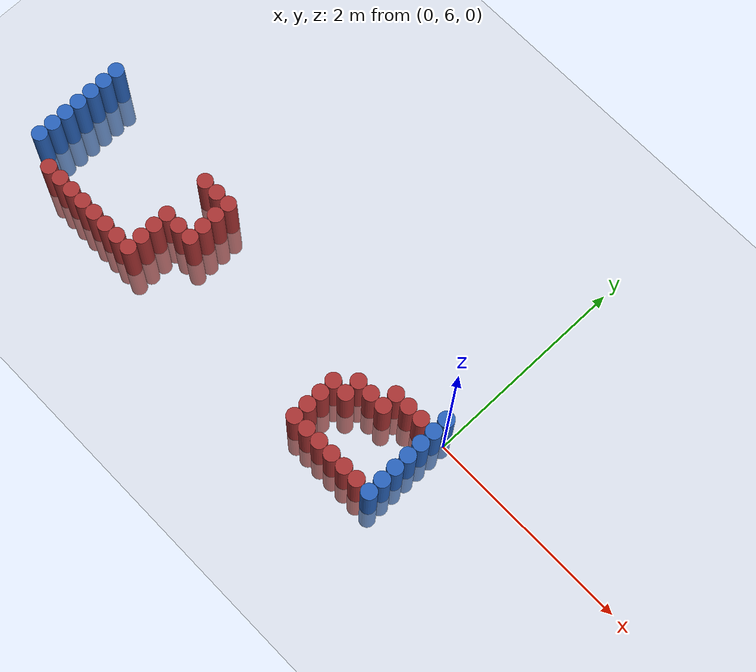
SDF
<sdf version="1.6">
 <world name="default">
  <model name="ground_plane">
   <static>1</static>
   <link name="link">
    <collision name="collision">
     <geometry><plane><normal>0 0 1</normal><size>100 100</size></plane></geometry>
     <surface><friction><ode><mu>100</mu><mu2>50</mu2></ode></friction></surface>
    </collision>
    <visual name="visual">
     <cast_shadows>0</cast_shadows>
     <geometry><plane><normal>0 0 1</normal><size>100 100</size></plane></geometry>
     <material>
      <script><uri>file://media/materials/scripts/gazebo.material</uri><name>Gazebo/Grey</name></script>
     </material>
    </visual>
   </link>
  </model>
  <model name="unit_cylinder_97">
   <static>1</static>
   <pose>-4.425000 5.325000 0.000000 0.000000 0.000000 0.000000</pose>
   <link name="link">
    <inertial>
     <mass>1</mass>
     <inertia><ixx>0.145833</ixx><ixy>0</ixy><ixz>0</ixz><iyy>0.145833</iyy><iyz>0</iyz><izz>0.125</izz></inertia>
    </inertial>
    <collision name="collision">
     <geometry><cylinder><radius>0.075000</radius><length>1</length></cylinder></geometry>
    </collision>
    <visual name="visual">
     <geometry><cylinder><radius>0.075000</radius><length>1</length></cylinder></geometry>
     <material>
      <ambient>0.152000 0.379000 0.720000 1</ambient>
      <diffuse>0.152000 0.379000 0.720000 1</diffuse>
     </material>
     <material>
      <script><name>Gazebo/Grey</name><uri>file://media/materials/scripts/gazebo.material</uri></script>
     </material>
    </visual>
   </link>
  </model>
  <model name="unit_cylinder_98">
   <static>1</static>
   <pose>-4.425000 5.475000 0.000000 0.000000 0.000000 0.000000</pose>
   <link name="link">
    <inertial>
     <mass>1</mass>
     <inertia><ixx>0.145833</ixx><ixy>0</ixy><ixz>0</ixz><iyy>0.145833</iyy><iyz>0</iyz><izz>0.125</izz></inertia>
    </inertial>
    <collision name="collision">
     <geometry><cylinder><radius>0.075000</radius><length>1</length></cylinder></geometry>
    </collision>
    <visual name="visual">
     <geometry><cylinder><radius>0.075000</radius><length>1</length></cylinder></geometry>
     <material>
      <ambient>0.152000 0.379000 0.720000 1</ambient>
      <diffuse>0.152000 0.379000 0.720000 1</diffuse>
     </material>
     <material>
      <script><name>Gazebo/Grey</name><uri>file://media/materials/scripts/gazebo.material</uri></script>
     </material>
    </visual>
   </link>
  </model>
  <model name="unit_cylinder_99">
   <static>1</static>
   <pose>-4.425000 5.625000 0.000000 0.000000 0.000000 0.000000</pose>
   <link name="link">
    <inertial>
     <mass>1</mass>
     <inertia><ixx>0.145833</ixx><ixy>0</ixy><ixz>0</ixz><iyy>0.145833</iyy><iyz>0</iyz><izz>0.125</izz></inertia>
    </inertial>
    <collision name="collision">
     <geometry><cylinder><radius>0.075000</radius><length>1</length></cylinder></geometry>
    </collision>
    <visual name="visual">
     <geometry><cylinder><radius>0.075000</radius><length>1</length></cylinder></geometry>
     <material>
      <ambient>0.152000 0.379000 0.720000 1</ambient>
      <diffuse>0.152000 0.379000 0.720000 1</diffuse>
     </material>
     <material>
      <script><name>Gazebo/Grey</name><uri>file://media/materials/scripts/gazebo.material</uri></script>
     </material>
    </visual>
   </link>
  </model>
  <model name="unit_cylinder_100">
   <static>1</static>
   <pose>-4.425000 5.775000 0.000000 0.000000 0.000000 0.000000</pose>
   <link name="link">
    <inertial>
     <mass>1</mass>
     <inertia><ixx>0.145833</ixx><ixy>0</ixy><ixz>0</ixz><iyy>0.145833</iyy><iyz>0</iyz><izz>0.125</izz></inertia>
    </inertial>
    <collision name="collision">
     <geometry><cylinder><radius>0.075000</radius><length>1</length></cylinder></geometry>
    </collision>
    <visual name="visual">
     <geometry><cylinder><radius>0.075000</radius><length>1</length></cylinder></geometry>
     <material>
      <ambient>0.152000 0.379000 0.720000 1</ambient>
      <diffuse>0.152000 0.379000 0.720000 1</diffuse>
     </material>
     <material>
      <script><name>Gazebo/Grey</name><uri>file://media/materials/scripts/gazebo.material</uri></script>
     </material>
    </visual>
   </link>
  </model>
  <model name="unit_cylinder_101">
   <static>1</static>
   <pose>-4.425000 5.925000 0.000000 0.000000 0.000000 0.000000</pose>
   <link name="link">
    <inertial>
     <mass>1</mass>
     <inertia><ixx>0.145833</ixx><ixy>0</ixy><ixz>0</ixz><iyy>0.145833</iyy><iyz>0</iyz><izz>0.125</izz></inertia>
    </inertial>
    <collision name="collision">
     <geometry><cylinder><radius>0.075000</radius><length>1</length></cylinder></geometry>
    </collision>
    <visual name="visual">
     <geometry><cylinder><radius>0.075000</radius><length>1</length></cylinder></geometry>
     <material>
      <ambient>0.152000 0.379000 0.720000 1</ambient>
      <diffuse>0.152000 0.379000 0.720000 1</diffuse>
     </material>
     <material>
      <script><name>Gazebo/Grey</name><uri>file://media/materials/scripts/gazebo.material</uri></script>
     </material>
    </visual>
   </link>
  </model>
  <model name="unit_cylinder_102">
   <static>1</static>
   <pose>-4.425000 6.075000 0.000000 0.000000 0.000000 0.000000</pose>
   <link name="link">
    <inertial>
     <mass>1</mass>
     <inertia><ixx>0.145833</ixx><ixy>0</ixy><ixz>0</ixz><iyy>0.145833</iyy><iyz>0</iyz><izz>0.125</izz></inertia>
    </inertial>
    <collision name="collision">
     <geometry><cylinder><radius>0.075000</radius><length>1</length></cylinder></geometry>
    </collision>
    <visual name="visual">
     <geometry><cylinder><radius>0.075000</radius><length>1</length></cylinder></geometry>
     <material>
      <ambient>0.152000 0.379000 0.720000 1</ambient>
      <diffuse>0.152000 0.379000 0.720000 1</diffuse>
     </material>
     <material>
      <script><name>Gazebo/Grey</name><uri>file://media/materials/scripts/gazebo.material</uri></script>
     </material>
    </visual>
   </link>
  </model>
  <model name="unit_cylinder_103">
   <static>1</static>
   <pose>-4.425000 6.225000 0.000000 0.000000 0.000000 0.000000</pose>
   <link name="link">
    <inertial>
     <mass>1</mass>
     <inertia><ixx>0.145833</ixx><ixy>0</ixy><ixz>0</ixz><iyy>0.145833</iyy><iyz>0</iyz><izz>0.125</izz></inertia>
    </inertial>
    <collision name="collision">
     <geometry><cylinder><radius>0.075000</radius><length>1</length></cylinder></geometry>
    </collision>
    <visual name="visual">
     <geometry><cylinder><radius>0.075000</radius><length>1</length></cylinder></geometry>
     <material>
      <ambient>0.152000 0.379000 0.720000 1</ambient>
      <diffuse>0.152000 0.379000 0.720000 1</diffuse>
     </material>
     <material>
      <script><name>Gazebo/Grey</name><uri>file://media/materials/scripts/gazebo.material</uri></script>
     </material>
    </visual>
   </link>
  </model>
  <model name="unit_cylinder_128">
   <static>1</static>
   <pose>-4.125000 5.175000 0.000000 0.000000 0.000000 0.000000</pose>
   <link name="link">
    <inertial>
     <mass>1</mass>
     <inertia><ixx>0.145833</ixx><ixy>0</ixy><ixz>0</ixz><iyy>0.145833</iyy><iyz>0</iyz><izz>0.125</izz></inertia>
    </inertial>
    <collision name="collision">
     <geometry><cylinder><radius>0.075000</radius><length>1</length></cylinder></geometry>
    </collision>
    <visual name="visual">
     <geometry><cylinder><radius>0.075000</radius><length>1</length></cylinder></geometry>
     <material>
      <ambient>0.648000 0.192000 0.192000 1</ambient>
      <diffuse>0.648000 0.192000 0.192000 1</diffuse>
     </material>
     <material>
      <script><name>Gazebo/Grey</name><uri>file://media/materials/scripts/gazebo.material</uri></script>
     </material>
    </visual>
   </link>
  </model>
  <model name="unit_cylinder_130">
   <static>1</static>
   <pose>-3.975000 5.175000 0.000000 0.000000 0.000000 0.000000</pose>
   <link name="link">
    <inertial>
     <mass>1</mass>
     <inertia><ixx>0.145833</ixx><ixy>0</ixy><ixz>0</ixz><iyy>0.145833</iyy><iyz>0</iyz><izz>0.125</izz></inertia>
    </inertial>
    <collision name="collision">
     <geometry><cylinder><radius>0.075000</radius><length>1</length></cylinder></geometry>
    </collision>
    <visual name="visual">
     <geometry><cylinder><radius>0.075000</radius><length>1</length></cylinder></geometry>
     <material>
      <ambient>0.648000 0.192000 0.192000 1</ambient>
      <diffuse>0.648000 0.192000 0.192000 1</diffuse>
     </material>
     <material>
      <script><name>Gazebo/Grey</name><uri>file://media/materials/scripts/gazebo.material</uri></script>
     </material>
    </visual>
   </link>
  </model>
  <model name="unit_cylinder_132">
   <static>1</static>
   <pose>-3.825000 5.175000 0.000000 0.000000 0.000000 0.000000</pose>
   <link name="link">
    <inertial>
     <mass>1</mass>
     <inertia><ixx>0.145833</ixx><ixy>0</ixy><ixz>0</ixz><iyy>0.145833</iyy><iyz>0</iyz><izz>0.125</izz></inertia>
    </inertial>
    <collision name="collision">
     <geometry><cylinder><radius>0.075000</radius><length>1</length></cylinder></geometry>
    </collision>
    <visual name="visual">
     <geometry><cylinder><radius>0.075000</radius><length>1</length></cylinder></geometry>
     <material>
      <ambient>0.648000 0.192000 0.192000 1</ambient>
      <diffuse>0.648000 0.192000 0.192000 1</diffuse>
     </material>
     <material>
      <script><name>Gazebo/Grey</name><uri>file://media/materials/scripts/gazebo.material</uri></script>
     </material>
    </visual>
   </link>
  </model>
  <model name="unit_cylinder_134">
   <static>1</static>
   <pose>-3.675000 5.175000 0.000000 0.000000 0.000000 0.000000</pose>
   <link name="link">
    <inertial>
     <mass>1</mass>
     <inertia><ixx>0.145833</ixx><ixy>0</ixy><ixz>0</ixz><iyy>0.145833</iyy><iyz>0</iyz><izz>0.125</izz></inertia>
    </inertial>
    <collision name="collision">
     <geometry><cylinder><radius>0.075000</radius><length>1</length></cylinder></geometry>
    </collision>
    <visual name="visual">
     <geometry><cylinder><radius>0.075000</radius><length>1</length></cylinder></geometry>
     <material>
      <ambient>0.648000 0.192000 0.192000 1</ambient>
      <diffuse>0.648000 0.192000 0.192000 1</diffuse>
     </material>
     <material>
      <script><name>Gazebo/Grey</name><uri>file://media/materials/scripts/gazebo.material</uri></script>
     </material>
    </visual>
   </link>
  </model>
  <model name="unit_cylinder_140">
   <static>1</static>
   <pose>-3.525000 5.175000 0.000000 0.000000 0.000000 0.000000</pose>
   <link name="link">
    <inertial>
     <mass>1</mass>
     <inertia><ixx>0.145833</ixx><ixy>0</ixy><ixz>0</ixz><iyy>0.145833</iyy><iyz>0</iyz><izz>0.125</izz></inertia>
    </inertial>
    <collision name="collision">
     <geometry><cylinder><radius>0.075000</radius><length>1</length></cylinder></geometry>
    </collision>
    <visual name="visual">
     <geometry><cylinder><radius>0.075000</radius><length>1</length></cylinder></geometry>
     <material>
      <ambient>0.648000 0.192000 0.192000 1</ambient>
      <diffuse>0.648000 0.192000 0.192000 1</diffuse>
     </material>
     <material>
      <script><name>Gazebo/Grey</name><uri>file://media/materials/scripts/gazebo.material</uri></script>
     </material>
    </visual>
   </link>
  </model>
  <model name="unit_cylinder_155">
   <static>1</static>
   <pose>-3.375000 5.175000 0.000000 0.000000 0.000000 0.000000</pose>
   <link name="link">
    <inertial>
     <mass>1</mass>
     <inertia><ixx>0.145833</ixx><ixy>0</ixy><ixz>0</ixz><iyy>0.145833</iyy><iyz>0</iyz><izz>0.125</izz></inertia>
    </inertial>
    <collision name="collision">
     <geometry><cylinder><radius>0.075000</radius><length>1</length></cylinder></geometry>
    </collision>
    <visual name="visual">
     <geometry><cylinder><radius>0.075000</radius><length>1</length></cylinder></geometry>
     <material>
      <ambient>0.648000 0.192000 0.192000 1</ambient>
      <diffuse>0.648000 0.192000 0.192000 1</diffuse>
     </material>
     <material>
      <script><name>Gazebo/Grey</name><uri>file://media/materials/scripts/gazebo.material</uri></script>
     </material>
    </visual>
   </link>
  </model>
  <model name="unit_cylinder_161">
   <static>1</static>
   <pose>-3.225000 5.175000 0.000000 0.000000 0.000000 0.000000</pose>
   <link name="link">
    <inertial>
     <mass>1</mass>
     <inertia><ixx>0.145833</ixx><ixy>0</ixy><ixz>0</ixz><iyy>0.145833</iyy><iyz>0</iyz><izz>0.125</izz></inertia>
    </inertial>
    <collision name="collision">
     <geometry><cylinder><radius>0.075000</radius><length>1</length></cylinder></geometry>
    </collision>
    <visual name="visual">
     <geometry><cylinder><radius>0.075000</radius><length>1</length></cylinder></geometry>
     <material>
      <ambient>0.648000 0.192000 0.192000 1</ambient>
      <diffuse>0.648000 0.192000 0.192000 1</diffuse>
     </material>
     <material>
      <script><name>Gazebo/Grey</name><uri>file://media/materials/scripts/gazebo.material</uri></script>
     </material>
    </visual>
   </link>
  </model>
  <model name="unit_cylinder_166">
   <static>1</static>
   <pose>-3.075000 5.175000 0.000000 0.000000 0.000000 0.000000</pose>
   <link name="link">
    <inertial>
     <mass>1</mass>
     <inertia><ixx>0.145833</ixx><ixy>0</ixy><ixz>0</ixz><iyy>0.145833</iyy><iyz>0</iyz><izz>0.125</izz></inertia>
    </inertial>
    <collision name="collision">
     <geometry><cylinder><radius>0.075000</radius><length>1</length></cylinder></geometry>
    </collision>
    <visual name="visual">
     <geometry><cylinder><radius>0.075000</radius><length>1</length></cylinder></geometry>
     <material>
      <ambient>0.648000 0.192000 0.192000 1</ambient>
      <diffuse>0.648000 0.192000 0.192000 1</diffuse>
     </material>
     <material>
      <script><name>Gazebo/Grey</name><uri>file://media/materials/scripts/gazebo.material</uri></script>
     </material>
    </visual>
   </link>
  </model>
  <model name="unit_cylinder_167">
   <static>1</static>
   <pose>-3.075000 5.325000 0.000000 0.000000 0.000000 0.000000</pose>
   <link name="link">
    <inertial>
     <mass>1</mass>
     <inertia><ixx>0.145833</ixx><ixy>0</ixy><ixz>0</ixz><iyy>0.145833</iyy><iyz>0</iyz><izz>0.125</izz></inertia>
    </inertial>
    <collision name="collision">
     <geometry><cylinder><radius>0.075000</radius><length>1</length></cylinder></geometry>
    </collision>
    <visual name="visual">
     <geometry><cylinder><radius>0.075000</radius><length>1</length></cylinder></geometry>
     <material>
      <ambient>0.648000 0.192000 0.192000 1</ambient>
      <diffuse>0.648000 0.192000 0.192000 1</diffuse>
     </material>
     <material>
      <script><name>Gazebo/Grey</name><uri>file://media/materials/scripts/gazebo.material</uri></script>
     </material>
    </visual>
   </link>
  </model>
  <model name="unit_cylinder_168">
   <static>1</static>
   <pose>-3.075000 5.475000 0.000000 0.000000 0.000000 0.000000</pose>
   <link name="link">
    <inertial>
     <mass>1</mass>
     <inertia><ixx>0.145833</ixx><ixy>0</ixy><ixz>0</ixz><iyy>0.145833</iyy><iyz>0</iyz><izz>0.125</izz></inertia>
    </inertial>
    <collision name="collision">
     <geometry><cylinder><radius>0.075000</radius><length>1</length></cylinder></geometry>
    </collision>
    <visual name="visual">
     <geometry><cylinder><radius>0.075000</radius><length>1</length></cylinder></geometry>
     <material>
      <ambient>0.648000 0.192000 0.192000 1</ambient>
      <diffuse>0.648000 0.192000 0.192000 1</diffuse>
     </material>
     <material>
      <script><name>Gazebo/Grey</name><uri>file://media/materials/scripts/gazebo.material</uri></script>
     </material>
    </visual>
   </link>
  </model>
  <model name="unit_cylinder_169">
   <static>1</static>
   <pose>-3.075000 5.625000 0.000000 0.000000 0.000000 0.000000</pose>
   <link name="link">
    <inertial>
     <mass>1</mass>
     <inertia><ixx>0.145833</ixx><ixy>0</ixy><ixz>0</ixz><iyy>0.145833</iyy><iyz>0</iyz><izz>0.125</izz></inertia>
    </inertial>
    <collision name="collision">
     <geometry><cylinder><radius>0.075000</radius><length>1</length></cylinder></geometry>
    </collision>
    <visual name="visual">
     <geometry><cylinder><radius>0.075000</radius><length>1</length></cylinder></geometry>
     <material>
      <ambient>0.648000 0.192000 0.192000 1</ambient>
      <diffuse>0.648000 0.192000 0.192000 1</diffuse>
     </material>
     <material>
      <script><name>Gazebo/Grey</name><uri>file://media/materials/scripts/gazebo.material</uri></script>
     </material>
    </visual>
   </link>
  </model>
  <model name="unit_cylinder_170">
   <static>1</static>
   <pose>-3.075000 6.075000 0.000000 0.000000 0.000000 0.000000</pose>
   <link name="link">
    <inertial>
     <mass>1</mass>
     <inertia><ixx>0.145833</ixx><ixy>0</ixy><ixz>0</ixz><iyy>0.145833</iyy><iyz>0</iyz><izz>0.125</izz></inertia>
    </inertial>
    <collision name="collision">
     <geometry><cylinder><radius>0.075000</radius><length>1</length></cylinder></geometry>
    </collision>
    <visual name="visual">
     <geometry><cylinder><radius>0.075000</radius><length>1</length></cylinder></geometry>
     <material>
      <ambient>0.648000 0.192000 0.192000 1</ambient>
      <diffuse>0.648000 0.192000 0.192000 1</diffuse>
     </material>
     <material>
      <script><name>Gazebo/Grey</name><uri>file://media/materials/scripts/gazebo.material</uri></script>
     </material>
    </visual>
   </link>
  </model>
  <model name="unit_cylinder_175">
   <static>1</static>
   <pose>-2.925000 5.625000 0.000000 0.000000 0.000000 0.000000</pose>
   <link name="link">
    <inertial>
     <mass>1</mass>
     <inertia><ixx>0.145833</ixx><ixy>0</ixy><ixz>0</ixz><iyy>0.145833</iyy><iyz>0</iyz><izz>0.125</izz></inertia>
    </inertial>
    <collision name="collision">
     <geometry><cylinder><radius>0.075000</radius><length>1</length></cylinder></geometry>
    </collision>
    <visual name="visual">
     <geometry><cylinder><radius>0.075000</radius><length>1</length></cylinder></geometry>
     <material>
      <ambient>0.648000 0.192000 0.192000 1</ambient>
      <diffuse>0.648000 0.192000 0.192000 1</diffuse>
     </material>
     <material>
      <script><name>Gazebo/Grey</name><uri>file://media/materials/scripts/gazebo.material</uri></script>
     </material>
    </visual>
   </link>
  </model>
  <model name="unit_cylinder_176">
   <static>1</static>
   <pose>-2.925000 6.075000 0.000000 0.000000 0.000000 0.000000</pose>
   <link name="link">
    <inertial>
     <mass>1</mass>
     <inertia><ixx>0.145833</ixx><ixy>0</ixy><ixz>0</ixz><iyy>0.145833</iyy><iyz>0</iyz><izz>0.125</izz></inertia>
    </inertial>
    <collision name="collision">
     <geometry><cylinder><radius>0.075000</radius><length>1</length></cylinder></geometry>
    </collision>
    <visual name="visual">
     <geometry><cylinder><radius>0.075000</radius><length>1</length></cylinder></geometry>
     <material>
      <ambient>0.648000 0.192000 0.192000 1</ambient>
      <diffuse>0.648000 0.192000 0.192000 1</diffuse>
     </material>
     <material>
      <script><name>Gazebo/Grey</name><uri>file://media/materials/scripts/gazebo.material</uri></script>
     </material>
    </visual>
   </link>
  </model>
  <model name="unit_cylinder_180">
   <static>1</static>
   <pose>-2.775000 5.625000 0.000000 0.000000 0.000000 0.000000</pose>
   <link name="link">
    <inertial>
     <mass>1</mass>
     <inertia><ixx>0.145833</ixx><ixy>0</ixy><ixz>0</ixz><iyy>0.145833</iyy><iyz>0</iyz><izz>0.125</izz></inertia>
    </inertial>
    <collision name="collision">
     <geometry><cylinder><radius>0.075000</radius><length>1</length></cylinder></geometry>
    </collision>
    <visual name="visual">
     <geometry><cylinder><radius>0.075000</radius><length>1</length></cylinder></geometry>
     <material>
      <ambient>0.648000 0.192000 0.192000 1</ambient>
      <diffuse>0.648000 0.192000 0.192000 1</diffuse>
     </material>
     <material>
      <script><name>Gazebo/Grey</name><uri>file://media/materials/scripts/gazebo.material</uri></script>
     </material>
    </visual>
   </link>
  </model>
  <model name="unit_cylinder_181">
   <static>1</static>
   <pose>-2.775000 5.775000 0.000000 0.000000 0.000000 0.000000</pose>
   <link name="link">
    <inertial>
     <mass>1</mass>
     <inertia><ixx>0.145833</ixx><ixy>0</ixy><ixz>0</ixz><iyy>0.145833</iyy><iyz>0</iyz><izz>0.125</izz></inertia>
    </inertial>
    <collision name="collision">
     <geometry><cylinder><radius>0.075000</radius><length>1</length></cylinder></geometry>
    </collision>
    <visual name="visual">
     <geometry><cylinder><radius>0.075000</radius><length>1</length></cylinder></geometry>
     <material>
      <ambient>0.648000 0.192000 0.192000 1</ambient>
      <diffuse>0.648000 0.192000 0.192000 1</diffuse>
     </material>
     <material>
      <script><name>Gazebo/Grey</name><uri>file://media/materials/scripts/gazebo.material</uri></script>
     </material>
    </visual>
   </link>
  </model>
  <model name="unit_cylinder_182">
   <static>1</static>
   <pose>-2.775000 5.925000 0.000000 0.000000 0.000000 0.000000</pose>
   <link name="link">
    <inertial>
     <mass>1</mass>
     <inertia><ixx>0.145833</ixx><ixy>0</ixy><ixz>0</ixz><iyy>0.145833</iyy><iyz>0</iyz><izz>0.125</izz></inertia>
    </inertial>
    <collision name="collision">
     <geometry><cylinder><radius>0.075000</radius><length>1</length></cylinder></geometry>
    </collision>
    <visual name="visual">
     <geometry><cylinder><radius>0.075000</radius><length>1</length></cylinder></geometry>
     <material>
      <ambient>0.648000 0.192000 0.192000 1</ambient>
      <diffuse>0.648000 0.192000 0.192000 1</diffuse>
     </material>
     <material>
      <script><name>Gazebo/Grey</name><uri>file://media/materials/scripts/gazebo.material</uri></script>
     </material>
    </visual>
   </link>
  </model>
  <model name="unit_cylinder_183">
   <static>1</static>
   <pose>-2.775000 6.075000 0.000000 0.000000 0.000000 0.000000</pose>
   <link name="link">
    <inertial>
     <mass>1</mass>
     <inertia><ixx>0.145833</ixx><ixy>0</ixy><ixz>0</ixz><iyy>0.145833</iyy><iyz>0</iyz><izz>0.125</izz></inertia>
    </inertial>
    <collision name="collision">
     <geometry><cylinder><radius>0.075000</radius><length>1</length></cylinder></geometry>
    </collision>
    <visual name="visual">
     <geometry><cylinder><radius>0.075000</radius><length>1</length></cylinder></geometry>
     <material>
      <ambient>0.648000 0.192000 0.192000 1</ambient>
      <diffuse>0.648000 0.192000 0.192000 1</diffuse>
     </material>
     <material>
      <script><name>Gazebo/Grey</name><uri>file://media/materials/scripts/gazebo.material</uri></script>
     </material>
    </visual>
   </link>
  </model>
  <model name="unit_cylinder_221">
   <static>1</static>
   <pose>-0.975000 5.175000 0.000000 0.000000 0.000000 0.000000</pose>
   <link name="link">
    <inertial>
     <mass>1</mass>
     <inertia><ixx>0.145833</ixx><ixy>0</ixy><ixz>0</ixz><iyy>0.145833</iyy><iyz>0</iyz><izz>0.125</izz></inertia>
    </inertial>
    <collision name="collision">
     <geometry><cylinder><radius>0.075000</radius><length>1</length></cylinder></geometry>
    </collision>
    <visual name="visual">
     <geometry><cylinder><radius>0.075000</radius><length>1</length></cylinder></geometry>
     <material>
      <ambient>0.648000 0.192000 0.192000 1</ambient>
      <diffuse>0.648000 0.192000 0.192000 1</diffuse>
     </material>
     <material>
      <script><name>Gazebo/Grey</name><uri>file://media/materials/scripts/gazebo.material</uri></script>
     </material>
    </visual>
   </link>
  </model>
  <model name="unit_cylinder_222">
   <static>1</static>
   <pose>-0.975000 5.325000 0.000000 0.000000 0.000000 0.000000</pose>
   <link name="link">
    <inertial>
     <mass>1</mass>
     <inertia><ixx>0.145833</ixx><ixy>0</ixy><ixz>0</ixz><iyy>0.145833</iyy><iyz>0</iyz><izz>0.125</izz></inertia>
    </inertial>
    <collision name="collision">
     <geometry><cylinder><radius>0.075000</radius><length>1</length></cylinder></geometry>
    </collision>
    <visual name="visual">
     <geometry><cylinder><radius>0.075000</radius><length>1</length></cylinder></geometry>
     <material>
      <ambient>0.648000 0.192000 0.192000 1</ambient>
      <diffuse>0.648000 0.192000 0.192000 1</diffuse>
     </material>
     <material>
      <script><name>Gazebo/Grey</name><uri>file://media/materials/scripts/gazebo.material</uri></script>
     </material>
    </visual>
   </link>
  </model>
  <model name="unit_cylinder_223">
   <static>1</static>
   <pose>-0.975000 5.475000 0.000000 0.000000 0.000000 0.000000</pose>
   <link name="link">
    <inertial>
     <mass>1</mass>
     <inertia><ixx>0.145833</ixx><ixy>0</ixy><ixz>0</ixz><iyy>0.145833</iyy><iyz>0</iyz><izz>0.125</izz></inertia>
    </inertial>
    <collision name="collision">
     <geometry><cylinder><radius>0.075000</radius><length>1</length></cylinder></geometry>
    </collision>
    <visual name="visual">
     <geometry><cylinder><radius>0.075000</radius><length>1</length></cylinder></geometry>
     <material>
      <ambient>0.648000 0.192000 0.192000 1</ambient>
      <diffuse>0.648000 0.192000 0.192000 1</diffuse>
     </material>
     <material>
      <script><name>Gazebo/Grey</name><uri>file://media/materials/scripts/gazebo.material</uri></script>
     </material>
    </visual>
   </link>
  </model>
  <model name="unit_cylinder_224">
   <static>1</static>
   <pose>-0.975000 5.625000 0.000000 0.000000 0.000000 0.000000</pose>
   <link name="link">
    <inertial>
     <mass>1</mass>
     <inertia><ixx>0.145833</ixx><ixy>0</ixy><ixz>0</ixz><iyy>0.145833</iyy><iyz>0</iyz><izz>0.125</izz></inertia>
    </inertial>
    <collision name="collision">
     <geometry><cylinder><radius>0.075000</radius><length>1</length></cylinder></geometry>
    </collision>
    <visual name="visual">
     <geometry><cylinder><radius>0.075000</radius><length>1</length></cylinder></geometry>
     <material>
      <ambient>0.648000 0.192000 0.192000 1</ambient>
      <diffuse>0.648000 0.192000 0.192000 1</diffuse>
     </material>
     <material>
      <script><name>Gazebo/Grey</name><uri>file://media/materials/scripts/gazebo.material</uri></script>
     </material>
    </visual>
   </link>
  </model>
  <model name="unit_cylinder_231">
   <static>1</static>
   <pose>-0.825000 5.175000 0.000000 0.000000 0.000000 0.000000</pose>
   <link name="link">
    <inertial>
     <mass>1</mass>
     <inertia><ixx>0.145833</ixx><ixy>0</ixy><ixz>0</ixz><iyy>0.145833</iyy><iyz>0</iyz><izz>0.125</izz></inertia>
    </inertial>
    <collision name="collision">
     <geometry><cylinder><radius>0.075000</radius><length>1</length></cylinder></geometry>
    </collision>
    <visual name="visual">
     <geometry><cylinder><radius>0.075000</radius><length>1</length></cylinder></geometry>
     <material>
      <ambient>0.648000 0.192000 0.192000 1</ambient>
      <diffuse>0.648000 0.192000 0.192000 1</diffuse>
     </material>
     <material>
      <script><name>Gazebo/Grey</name><uri>file://media/materials/scripts/gazebo.material</uri></script>
     </material>
    </visual>
   </link>
  </model>
  <model name="unit_cylinder_232">
   <static>1</static>
   <pose>-0.825000 5.625000 0.000000 0.000000 0.000000 0.000000</pose>
   <link name="link">
    <inertial>
     <mass>1</mass>
     <inertia><ixx>0.145833</ixx><ixy>0</ixy><ixz>0</ixz><iyy>0.145833</iyy><iyz>0</iyz><izz>0.125</izz></inertia>
    </inertial>
    <collision name="collision">
     <geometry><cylinder><radius>0.075000</radius><length>1</length></cylinder></geometry>
    </collision>
    <visual name="visual">
     <geometry><cylinder><radius>0.075000</radius><length>1</length></cylinder></geometry>
     <material>
      <ambient>0.648000 0.192000 0.192000 1</ambient>
      <diffuse>0.648000 0.192000 0.192000 1</diffuse>
     </material>
     <material>
      <script><name>Gazebo/Grey</name><uri>file://media/materials/scripts/gazebo.material</uri></script>
     </material>
    </visual>
   </link>
  </model>
  <model name="unit_cylinder_233">
   <static>1</static>
   <pose>-0.825000 5.775000 0.000000 0.000000 0.000000 0.000000</pose>
   <link name="link">
    <inertial>
     <mass>1</mass>
     <inertia><ixx>0.145833</ixx><ixy>0</ixy><ixz>0</ixz><iyy>0.145833</iyy><iyz>0</iyz><izz>0.125</izz></inertia>
    </inertial>
    <collision name="collision">
     <geometry><cylinder><radius>0.075000</radius><length>1</length></cylinder></geometry>
    </collision>
    <visual name="visual">
     <geometry><cylinder><radius>0.075000</radius><length>1</length></cylinder></geometry>
     <material>
      <ambient>0.648000 0.192000 0.192000 1</ambient>
      <diffuse>0.648000 0.192000 0.192000 1</diffuse>
     </material>
     <material>
      <script><name>Gazebo/Grey</name><uri>file://media/materials/scripts/gazebo.material</uri></script>
     </material>
    </visual>
   </link>
  </model>
  <model name="unit_cylinder_239">
   <static>1</static>
   <pose>-0.675000 5.175000 0.000000 0.000000 0.000000 0.000000</pose>
   <link name="link">
    <inertial>
     <mass>1</mass>
     <inertia><ixx>0.145833</ixx><ixy>0</ixy><ixz>0</ixz><iyy>0.145833</iyy><iyz>0</iyz><izz>0.125</izz></inertia>
    </inertial>
    <collision name="collision">
     <geometry><cylinder><radius>0.075000</radius><length>1</length></cylinder></geometry>
    </collision>
    <visual name="visual">
     <geometry><cylinder><radius>0.075000</radius><length>1</length></cylinder></geometry>
     <material>
      <ambient>0.648000 0.192000 0.192000 1</ambient>
      <diffuse>0.648000 0.192000 0.192000 1</diffuse>
     </material>
     <material>
      <script><name>Gazebo/Grey</name><uri>file://media/materials/scripts/gazebo.material</uri></script>
     </material>
    </visual>
   </link>
  </model>
  <model name="unit_cylinder_240">
   <static>1</static>
   <pose>-0.675000 5.775000 0.000000 0.000000 0.000000 0.000000</pose>
   <link name="link">
    <inertial>
     <mass>1</mass>
     <inertia><ixx>0.145833</ixx><ixy>0</ixy><ixz>0</ixz><iyy>0.145833</iyy><iyz>0</iyz><izz>0.125</izz></inertia>
    </inertial>
    <collision name="collision">
     <geometry><cylinder><radius>0.075000</radius><length>1</length></cylinder></geometry>
    </collision>
    <visual name="visual">
     <geometry><cylinder><radius>0.075000</radius><length>1</length></cylinder></geometry>
     <material>
      <ambient>0.648000 0.192000 0.192000 1</ambient>
      <diffuse>0.648000 0.192000 0.192000 1</diffuse>
     </material>
     <material>
      <script><name>Gazebo/Grey</name><uri>file://media/materials/scripts/gazebo.material</uri></script>
     </material>
    </visual>
   </link>
  </model>
  <model name="unit_cylinder_245">
   <static>1</static>
   <pose>-0.525000 5.175000 0.000000 0.000000 0.000000 0.000000</pose>
   <link name="link">
    <inertial>
     <mass>1</mass>
     <inertia><ixx>0.145833</ixx><ixy>0</ixy><ixz>0</ixz><iyy>0.145833</iyy><iyz>0</iyz><izz>0.125</izz></inertia>
    </inertial>
    <collision name="collision">
     <geometry><cylinder><radius>0.075000</radius><length>1</length></cylinder></geometry>
    </collision>
    <visual name="visual">
     <geometry><cylinder><radius>0.075000</radius><length>1</length></cylinder></geometry>
     <material>
      <ambient>0.648000 0.192000 0.192000 1</ambient>
      <diffuse>0.648000 0.192000 0.192000 1</diffuse>
     </material>
     <material>
      <script><name>Gazebo/Grey</name><uri>file://media/materials/scripts/gazebo.material</uri></script>
     </material>
    </visual>
   </link>
  </model>
  <model name="unit_cylinder_246">
   <static>1</static>
   <pose>-0.525000 5.775000 0.000000 0.000000 0.000000 0.000000</pose>
   <link name="link">
    <inertial>
     <mass>1</mass>
     <inertia><ixx>0.145833</ixx><ixy>0</ixy><ixz>0</ixz><iyy>0.145833</iyy><iyz>0</iyz><izz>0.125</izz></inertia>
    </inertial>
    <collision name="collision">
     <geometry><cylinder><radius>0.075000</radius><length>1</length></cylinder></geometry>
    </collision>
    <visual name="visual">
     <geometry><cylinder><radius>0.075000</radius><length>1</length></cylinder></geometry>
     <material>
      <ambient>0.648000 0.192000 0.192000 1</ambient>
      <diffuse>0.648000 0.192000 0.192000 1</diffuse>
     </material>
     <material>
      <script><name>Gazebo/Grey</name><uri>file://media/materials/scripts/gazebo.material</uri></script>
     </material>
    </visual>
   </link>
  </model>
  <model name="unit_cylinder_247">
   <static>1</static>
   <pose>-0.525000 5.925000 0.000000 0.000000 0.000000 0.000000</pose>
   <link name="link">
    <inertial>
     <mass>1</mass>
     <inertia><ixx>0.145833</ixx><ixy>0</ixy><ixz>0</ixz><iyy>0.145833</iyy><iyz>0</iyz><izz>0.125</izz></inertia>
    </inertial>
    <collision name="collision">
     <geometry><cylinder><radius>0.075000</radius><length>1</length></cylinder></geometry>
    </collision>
    <visual name="visual">
     <geometry><cylinder><radius>0.075000</radius><length>1</length></cylinder></geometry>
     <material>
      <ambient>0.648000 0.192000 0.192000 1</ambient>
      <diffuse>0.648000 0.192000 0.192000 1</diffuse>
     </material>
     <material>
      <script><name>Gazebo/Grey</name><uri>file://media/materials/scripts/gazebo.material</uri></script>
     </material>
    </visual>
   </link>
  </model>
  <model name="unit_cylinder_254">
   <static>1</static>
   <pose>-0.375000 5.175000 0.000000 0.000000 0.000000 0.000000</pose>
   <link name="link">
    <inertial>
     <mass>1</mass>
     <inertia><ixx>0.145833</ixx><ixy>0</ixy><ixz>0</ixz><iyy>0.145833</iyy><iyz>0</iyz><izz>0.125</izz></inertia>
    </inertial>
    <collision name="collision">
     <geometry><cylinder><radius>0.075000</radius><length>1</length></cylinder></geometry>
    </collision>
    <visual name="visual">
     <geometry><cylinder><radius>0.075000</radius><length>1</length></cylinder></geometry>
     <material>
      <ambient>0.648000 0.192000 0.192000 1</ambient>
      <diffuse>0.648000 0.192000 0.192000 1</diffuse>
     </material>
     <material>
      <script><name>Gazebo/Grey</name><uri>file://media/materials/scripts/gazebo.material</uri></script>
     </material>
    </visual>
   </link>
  </model>
  <model name="unit_cylinder_255">
   <static>1</static>
   <pose>-0.375000 5.925000 0.000000 0.000000 0.000000 0.000000</pose>
   <link name="link">
    <inertial>
     <mass>1</mass>
     <inertia><ixx>0.145833</ixx><ixy>0</ixy><ixz>0</ixz><iyy>0.145833</iyy><iyz>0</iyz><izz>0.125</izz></inertia>
    </inertial>
    <collision name="collision">
     <geometry><cylinder><radius>0.075000</radius><length>1</length></cylinder></geometry>
    </collision>
    <visual name="visual">
     <geometry><cylinder><radius>0.075000</radius><length>1</length></cylinder></geometry>
     <material>
      <ambient>0.648000 0.192000 0.192000 1</ambient>
      <diffuse>0.648000 0.192000 0.192000 1</diffuse>
     </material>
     <material>
      <script><name>Gazebo/Grey</name><uri>file://media/materials/scripts/gazebo.material</uri></script>
     </material>
    </visual>
   </link>
  </model>
  <model name="unit_cylinder_258">
   <static>1</static>
   <pose>-0.225000 5.175000 0.000000 0.000000 0.000000 0.000000</pose>
   <link name="link">
    <inertial>
     <mass>1</mass>
     <inertia><ixx>0.145833</ixx><ixy>0</ixy><ixz>0</ixz><iyy>0.145833</iyy><iyz>0</iyz><izz>0.125</izz></inertia>
    </inertial>
    <collision name="collision">
     <geometry><cylinder><radius>0.075000</radius><length>1</length></cylinder></geometry>
    </collision>
    <visual name="visual">
     <geometry><cylinder><radius>0.075000</radius><length>1</length></cylinder></geometry>
     <material>
      <ambient>0.648000 0.192000 0.192000 1</ambient>
      <diffuse>0.648000 0.192000 0.192000 1</diffuse>
     </material>
     <material>
      <script><name>Gazebo/Grey</name><uri>file://media/materials/scripts/gazebo.material</uri></script>
     </material>
    </visual>
   </link>
  </model>
  <model name="unit_cylinder_259">
   <static>1</static>
   <pose>-0.225000 5.925000 0.000000 0.000000 0.000000 0.000000</pose>
   <link name="link">
    <inertial>
     <mass>1</mass>
     <inertia><ixx>0.145833</ixx><ixy>0</ixy><ixz>0</ixz><iyy>0.145833</iyy><iyz>0</iyz><izz>0.125</izz></inertia>
    </inertial>
    <collision name="collision">
     <geometry><cylinder><radius>0.075000</radius><length>1</length></cylinder></geometry>
    </collision>
    <visual name="visual">
     <geometry><cylinder><radius>0.075000</radius><length>1</length></cylinder></geometry>
     <material>
      <ambient>0.648000 0.192000 0.192000 1</ambient>
      <diffuse>0.648000 0.192000 0.192000 1</diffuse>
     </material>
     <material>
      <script><name>Gazebo/Grey</name><uri>file://media/materials/scripts/gazebo.material</uri></script>
     </material>
    </visual>
   </link>
  </model>
  <model name="unit_cylinder_262">
   <static>1</static>
   <pose>-0.075000 5.175000 0.000000 0.000000 0.000000 0.000000</pose>
   <link name="link">
    <inertial>
     <mass>1</mass>
     <inertia><ixx>0.145833</ixx><ixy>0</ixy><ixz>0</ixz><iyy>0.145833</iyy><iyz>0</iyz><izz>0.125</izz></inertia>
    </inertial>
    <collision name="collision">
     <geometry><cylinder><radius>0.075000</radius><length>1</length></cylinder></geometry>
    </collision>
    <visual name="visual">
     <geometry><cylinder><radius>0.075000</radius><length>1</length></cylinder></geometry>
     <material>
      <ambient>0.152000 0.379000 0.720000 1</ambient>
      <diffuse>0.152000 0.379000 0.720000 1</diffuse>
     </material>
     <material>
      <script><name>Gazebo/Grey</name><uri>file://media/materials/scripts/gazebo.material</uri></script>
     </material>
    </visual>
   </link>
  </model>
  <model name="unit_cylinder_263">
   <static>1</static>
   <pose>-0.075000 5.325000 0.000000 0.000000 0.000000 0.000000</pose>
   <link name="link">
    <inertial>
     <mass>1</mass>
     <inertia><ixx>0.145833</ixx><ixy>0</ixy><ixz>0</ixz><iyy>0.145833</iyy><iyz>0</iyz><izz>0.125</izz></inertia>
    </inertial>
    <collision name="collision">
     <geometry><cylinder><radius>0.075000</radius><length>1</length></cylinder></geometry>
    </collision>
    <visual name="visual">
     <geometry><cylinder><radius>0.075000</radius><length>1</length></cylinder></geometry>
     <material>
      <ambient>0.152000 0.379000 0.720000 1</ambient>
      <diffuse>0.152000 0.379000 0.720000 1</diffuse>
     </material>
     <material>
      <script><name>Gazebo/Grey</name><uri>file://media/materials/scripts/gazebo.material</uri></script>
     </material>
    </visual>
   </link>
  </model>
  <model name="unit_cylinder_264">
   <static>1</static>
   <pose>-0.075000 5.475000 0.000000 0.000000 0.000000 0.000000</pose>
   <link name="link">
    <inertial>
     <mass>1</mass>
     <inertia><ixx>0.145833</ixx><ixy>0</ixy><ixz>0</ixz><iyy>0.145833</iyy><iyz>0</iyz><izz>0.125</izz></inertia>
    </inertial>
    <collision name="collision">
     <geometry><cylinder><radius>0.075000</radius><length>1</length></cylinder></geometry>
    </collision>
    <visual name="visual">
     <geometry><cylinder><radius>0.075000</radius><length>1</length></cylinder></geometry>
     <material>
      <ambient>0.152000 0.379000 0.720000 1</ambient>
      <diffuse>0.152000 0.379000 0.720000 1</diffuse>
     </material>
     <material>
      <script><name>Gazebo/Grey</name><uri>file://media/materials/scripts/gazebo.material</uri></script>
     </material>
    </visual>
   </link>
  </model>
  <model name="unit_cylinder_265">
   <static>1</static>
   <pose>-0.075000 5.625000 0.000000 0.000000 0.000000 0.000000</pose>
   <link name="link">
    <inertial>
     <mass>1</mass>
     <inertia><ixx>0.145833</ixx><ixy>0</ixy><ixz>0</ixz><iyy>0.145833</iyy><iyz>0</iyz><izz>0.125</izz></inertia>
    </inertial>
    <collision name="collision">
     <geometry><cylinder><radius>0.075000</radius><length>1</length></cylinder></geometry>
    </collision>
    <visual name="visual">
     <geometry><cylinder><radius>0.075000</radius><length>1</length></cylinder></geometry>
     <material>
      <ambient>0.152000 0.379000 0.720000 1</ambient>
      <diffuse>0.152000 0.379000 0.720000 1</diffuse>
     </material>
     <material>
      <script><name>Gazebo/Grey</name><uri>file://media/materials/scripts/gazebo.material</uri></script>
     </material>
    </visual>
   </link>
  </model>
  <model name="unit_cylinder_266">
   <static>1</static>
   <pose>-0.075000 5.775000 0.000000 0.000000 0.000000 0.000000</pose>
   <link name="link">
    <inertial>
     <mass>1</mass>
     <inertia><ixx>0.145833</ixx><ixy>0</ixy><ixz>0</ixz><iyy>0.145833</iyy><iyz>0</iyz><izz>0.125</izz></inertia>
    </inertial>
    <collision name="collision">
     <geometry><cylinder><radius>0.075000</radius><length>1</length></cylinder></geometry>
    </collision>
    <visual name="visual">
     <geometry><cylinder><radius>0.075000</radius><length>1</length></cylinder></geometry>
     <material>
      <ambient>0.152000 0.379000 0.720000 1</ambient>
      <diffuse>0.152000 0.379000 0.720000 1</diffuse>
     </material>
     <material>
      <script><name>Gazebo/Grey</name><uri>file://media/materials/scripts/gazebo.material</uri></script>
     </material>
    </visual>
   </link>
  </model>
  <model name="unit_cylinder_267">
   <static>1</static>
   <pose>-0.075000 5.925000 0.000000 0.000000 0.000000 0.000000</pose>
   <link name="link">
    <inertial>
     <mass>1</mass>
     <inertia><ixx>0.145833</ixx><ixy>0</ixy><ixz>0</ixz><iyy>0.145833</iyy><iyz>0</iyz><izz>0.125</izz></inertia>
    </inertial>
    <collision name="collision">
     <geometry><cylinder><radius>0.075000</radius><length>1</length></cylinder></geometry>
    </collision>
    <visual name="visual">
     <geometry><cylinder><radius>0.075000</radius><length>1</length></cylinder></geometry>
     <material>
      <ambient>0.152000 0.379000 0.720000 1</ambient>
      <diffuse>0.152000 0.379000 0.720000 1</diffuse>
     </material>
     <material>
      <script><name>Gazebo/Grey</name><uri>file://media/materials/scripts/gazebo.material</uri></script>
     </material>
    </visual>
   </link>
  </model>
  <model name="unit_cylinder_268">
   <static>1</static>
   <pose>-0.075000 6.075000 0.000000 0.000000 0.000000 0.000000</pose>
   <link name="link">
    <inertial>
     <mass>1</mass>
     <inertia><ixx>0.145833</ixx><ixy>0</ixy><ixz>0</ixz><iyy>0.145833</iyy><iyz>0</iyz><izz>0.125</izz></inertia>
    </inertial>
    <collision name="collision">
     <geometry><cylinder><radius>0.075000</radius><length>1</length></cylinder></geometry>
    </collision>
    <visual name="visual">
     <geometry><cylinder><radius>0.075000</radius><length>1</length></cylinder></geometry>
     <material>
      <ambient>0.152000 0.379000 0.720000 1</ambient>
      <diffuse>0.152000 0.379000 0.720000 1</diffuse>
     </material>
     <material>
      <script><name>Gazebo/Grey</name><uri>file://media/materials/scripts/gazebo.material</uri></script>
     </material>
    </visual>
   </link>
  </model>
 </world>
</sdf>
